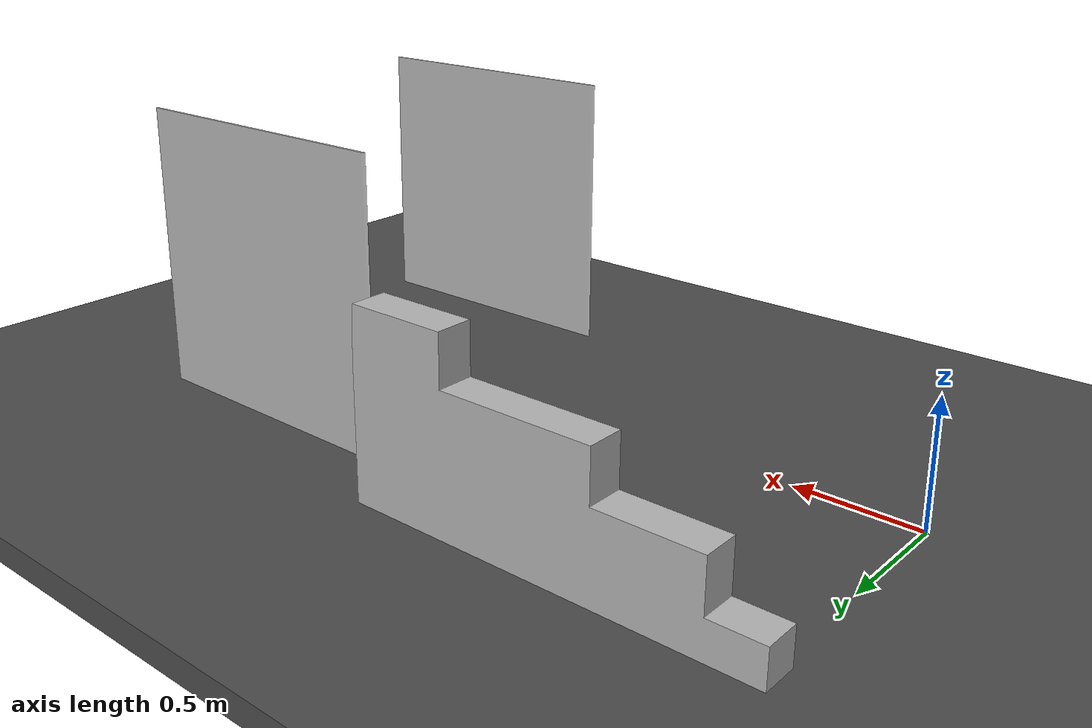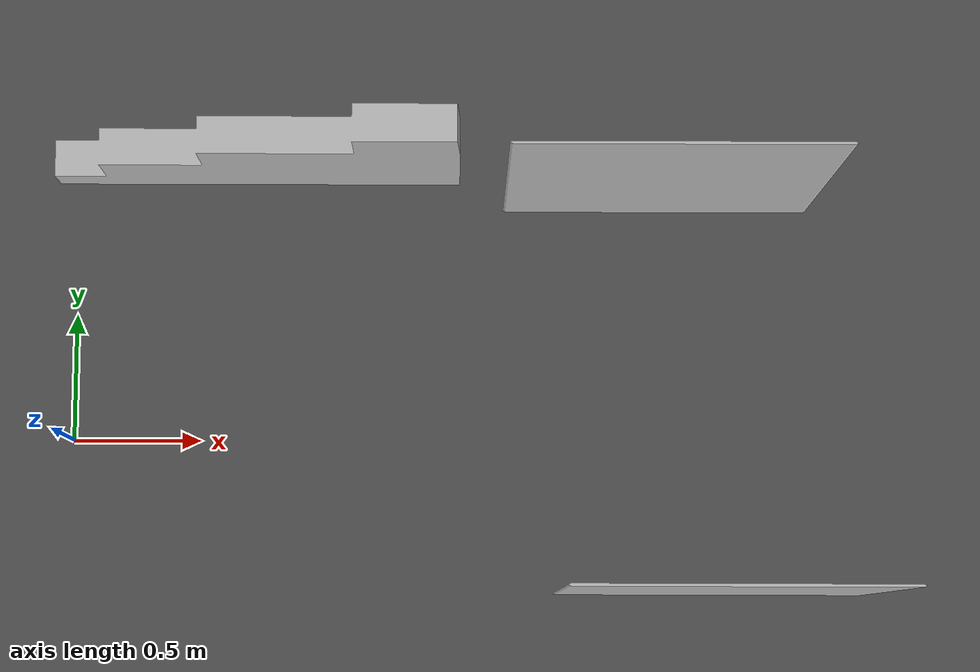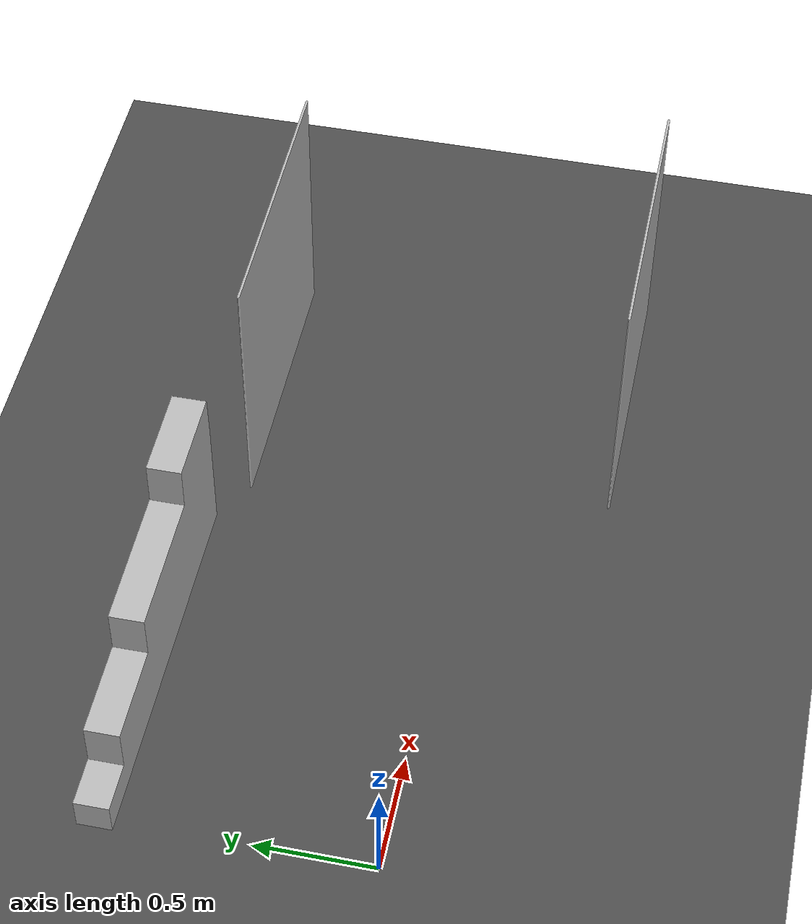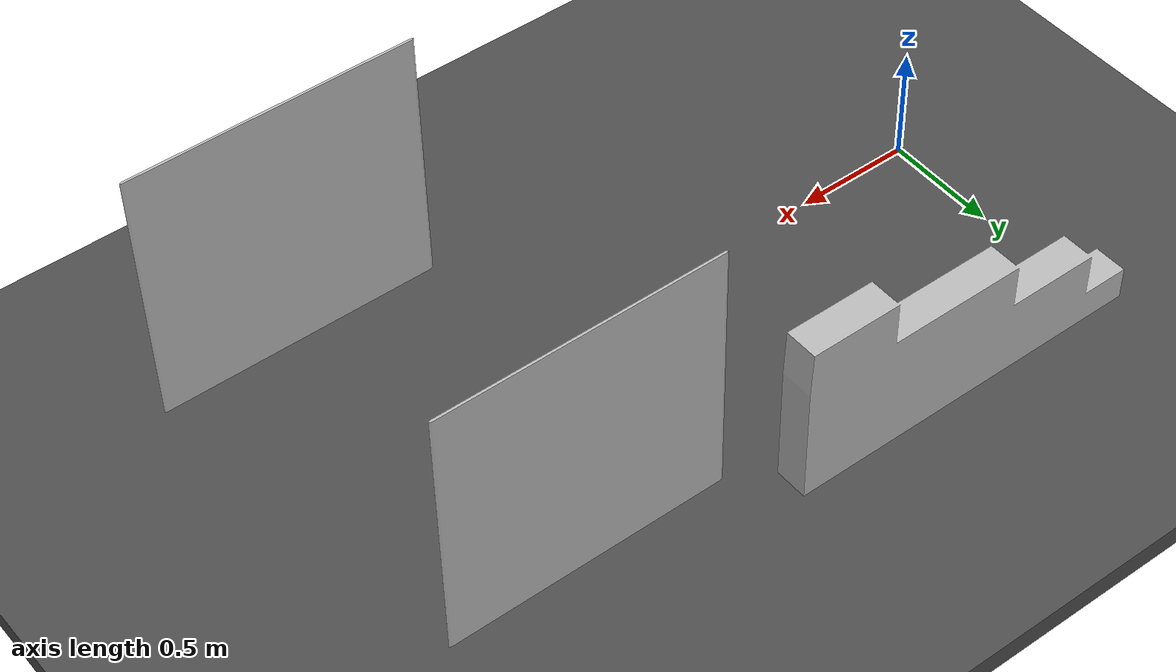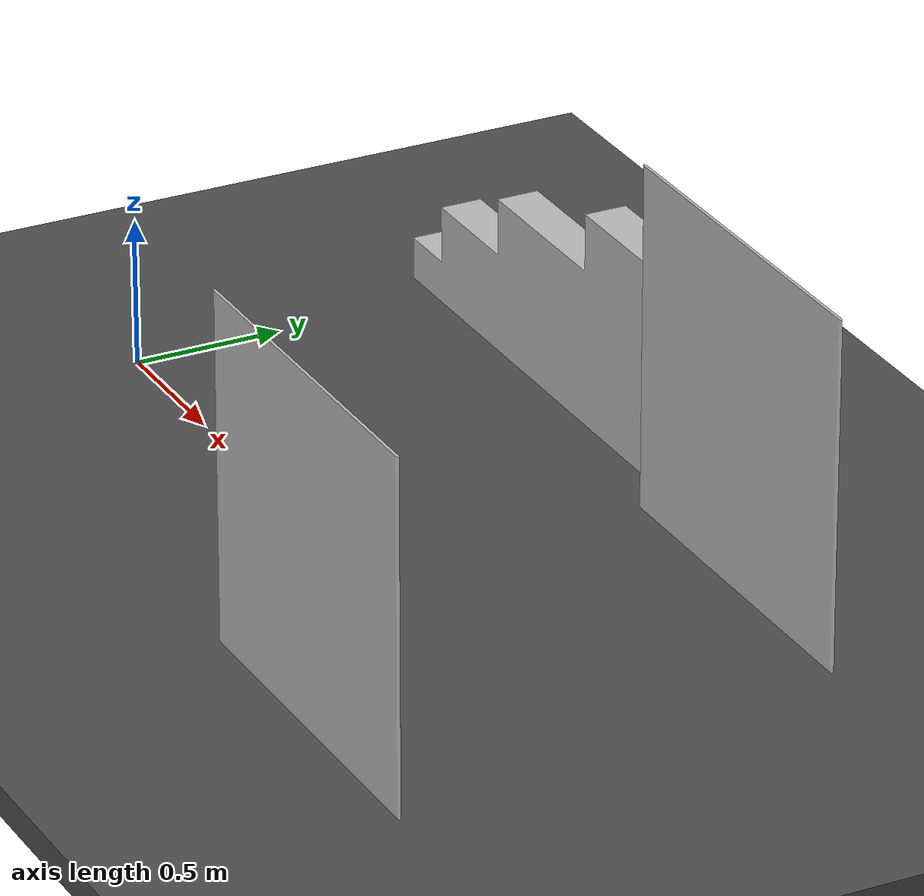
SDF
<sdf version="1.7">
 <world name="default">
  <light name="sun" type="directional">
   <pose>0 0 10 0 -0 0</pose>
   <diffuse>0.8 0.8 0.8 1</diffuse>
   <specular>0.2 0.2 0.2 1</specular>
   <attenuation>
    <range>1000</range>
    <constant>0.9</constant>
    <linear>0.01</linear>
    <quadratic>0.001</quadratic>
   </attenuation>
   <direction>-0.5 0.1 -0.9</direction>
   <spot><inner_angle>0</inner_angle><outer_angle>0</outer_angle><falloff>0</falloff></spot>
  </light>
  <model name="ground_plane">
   <static>1</static>
   <link name="link">
    <collision name="collision">
     <geometry><plane><normal>0 0 1</normal><size>100 100</size></plane></geometry>
     <surface>
      <contact><collide_bitmask>65535</collide_bitmask></contact>
      <friction><ode><mu>100</mu><mu2>50</mu2></ode></friction>
     </surface>
    </collision>
    <visual name="visual">
     <cast_shadows>0</cast_shadows>
     <geometry><plane><normal>0 0 1</normal><size>100 100</size></plane></geometry>
     <material>
      <script><uri>file://media/materials/scripts/gazebo.material</uri><name>Gazebo/Grey</name></script>
     </material>
    </visual>
   </link>
  </model>
  <gravity>0 0 -9.8</gravity>
  <magnetic_field>6e-06 2.3e-05 -4.2e-05</magnetic_field>
  <atmosphere type="adiabatic"/>
  <physics type="ode">
   <max_step_size>0.001</max_step_size>
   <real_time_factor>1</real_time_factor>
   <real_time_update_rate>1000</real_time_update_rate>
  </physics>
  <scene><ambient>0.4 0.4 0.4 1</ambient><background>0.7 0.7 0.7 1</background><shadows>1</shadows></scene>
  <spherical_coordinates>
   <surface_model>EARTH_WGS84</surface_model>
   <latitude_deg>0</latitude_deg>
   <longitude_deg>0</longitude_deg>
   <elevation>0</elevation>
   <heading_deg>0</heading_deg>
  </spherical_coordinates>
  <model name="asphalt_plane">
   <static>1</static>
   <link name="link">
    <collision name="collision"><geometry><box><size>20 20 0.1</size></box></geometry></collision>
    <visual name="visual">
     <cast_shadows>0</cast_shadows>
     <geometry><box><size>20 20 0.1</size></box></geometry>
     <material>
      <script>
       <uri>model://asphalt_plane/materials/scripts</uri>
       <uri>model://asphalt_plane/materials/textures</uri>
       <name>vrc/asphalt</name>
      </script>
     </material>
    </visual>
   </link>
   <pose>-0.568705 0.454873 0 0 -0 0</pose>
  </model>
  <model name="block_wall">
   <pose>0.869939 1.0944 0.30924 0 -0 0</pose>
   <static>1</static>
   <link name="blocks">
    <collision name="collision">
     <geometry><mesh><uri>model://drc_practice_block_wall/meshes/block_wall.dae</uri></mesh></geometry>
     <surface>
      <bounce><restitution_coefficient>0</restitution_coefficient><threshold>100000</threshold></bounce>
      <friction><ode><mu>100</mu><mu2>50</mu2></ode></friction>
      <contact>
       <ode><soft_cfm>0</soft_cfm><soft_erp>0.2</soft_erp><max_vel>0</max_vel><min_depth>0</min_depth></ode>
      </contact>
     </surface>
    </collision>
    <visual name="visual">
     <geometry><mesh><uri>model://drc_practice_block_wall/meshes/block_wall.dae</uri></mesh></geometry>
    </visual>
   </link>
  </model>
  <model name="nist_maze_wall_120">
   <static>1</static>
   <link name="nist_maze_wall_120_link">
    <collision name="collision">
     <geometry>
      <mesh><uri>model://nist_maze_wall_120/meshes/nist_maze_wall_120.dae</uri><scale>1 1 1</scale></mesh>
     </geometry>
    </collision>
    <visual name="visual">
     <geometry>
      <mesh><uri>model://nist_maze_wall_120/meshes/nist_maze_wall_120.dae</uri><scale>1 1 1</scale></mesh>
     </geometry>
    </visual>
   </link>
   <pose>2.28815 0.318542 0 0 -0 0</pose>
  </model>
  <model name="nist_maze_wall_120_0">
   <static>1</static>
   <link name="nist_maze_wall_120_link">
    <collision name="collision">
     <geometry>
      <mesh><uri>model://nist_maze_wall_120/meshes/nist_maze_wall_120.dae</uri><scale>1 1 1</scale></mesh>
     </geometry>
    </collision>
    <visual name="visual">
     <geometry>
      <mesh><uri>model://nist_maze_wall_120/meshes/nist_maze_wall_120.dae</uri><scale>1 1 1</scale></mesh>
     </geometry>
    </visual>
   </link>
   <pose>2.48178 -1.19332 0 0 -0 0</pose>
  </model>
 </world>
</sdf>
